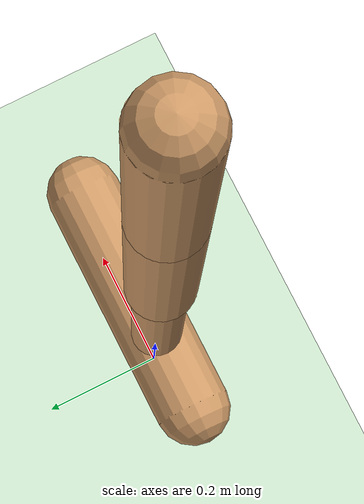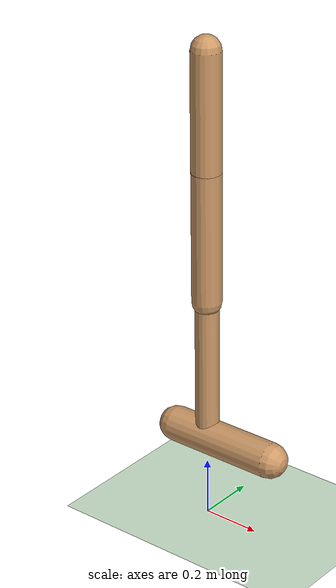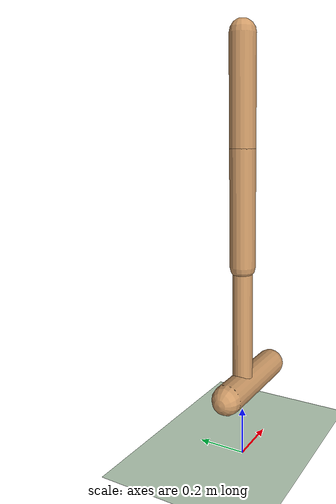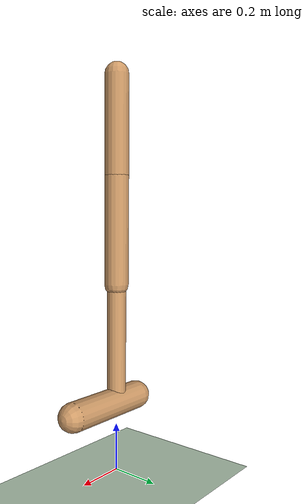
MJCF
<mujoco model="hopper">
  <compiler angle="degree" coordinate="local" inertiafromgeom="true"/>

  <option integrator="implicitfast" timestep="0.01"/>

  <default>
    <joint armature="0.01" damping="1" limited="true"/>
    <geom conaffinity="1" condim="1" contype="1" margin="0.001" material="geom" rgba="0.8 0.6 .4 1" solimp=".8 .8 .01" solref=".02 1"/>
    <motor ctrllimited="true" ctrlrange="-1.0 1.0" gear="25"/>
  </default>

  <asset>
    <texture type="skybox" builtin="gradient" rgb1=".4 .5 .6" rgb2="0 0 0" width="100" height="100"/>
    <texture builtin="checker" height="100" name="texplane" rgb1="0 0 0" rgb2="0.8 0.8 0.8" type="2d" width="100"/>
    <material name="MatPlane" reflectance="0.5" shininess="1" specular="1" texrepeat="60 60" texture="texplane"/>
    <texture builtin="flat" height="1278" mark="cross" markrgb="1 1 1" name="texgeom" random="0.01" rgb1="0.8 0.6 0.4" rgb2="0.8 0.6 0.4" type="cube" width="127"/>
    <material name="geom" texture="texgeom" texuniform="true"/>
  </asset>

  <worldbody>
    <light cutoff="100" diffuse="1 1 1" dir="0 0 -1" directional="true" pos="0 0 1.3" specular=".1 .1 .1"/>
    <geom conaffinity="1" condim="3" name="floor" pos="0 0 0" rgba="0.8 0.9 0.8 1" size="20 20 .125" type="plane" material="MatPlane"/>

    <body name="torso" pos="0 0 1.25">
      <camera name="track" mode="trackcom" pos="0 -3 1" xyaxes="1 0 0 0 0 1"/>
      <joint armature="0" axis="1 0 0" damping="0" limited="false" name="rootx" pos="0 0 0" stiffness="0" type="slide"/>
      <joint armature="0" axis="0 0 1" damping="0" limited="false" name="rootz" pos="0 0 0" stiffness="0" type="slide"/>
      <joint armature="0" axis="0 1 0" damping="0" limited="false" name="rooty" pos="0 0 0" stiffness="0" type="hinge"/>
      <geom friction="0.9" fromto="0 0 0.4 0 0 0" name="torso_geom" size="0.05" type="capsule"/>

      <body name="thigh" pos="0 0 0">
        <joint axis="0 -1 0" name="thigh_joint" pos="0 0 0" range="-150 150" type="hinge"/>
        <geom friction="0.9" fromto="0 0 0 0 0 -0.45" name="thigh_geom" size="0.05" type="capsule"/>

        <body name="leg" pos="0 0 -0.45">
          <joint axis="0 -1 0" name="leg_joint" pos="0 0 0" range="-150 150" type="hinge"/>
          <geom friction="0.9" fromto="0 0 0 0 0 -0.5" name="leg_geom" size="0.04" type="capsule"/>

          <body name="foot" pos="0 0 -0.5">
            <joint axis="0 -1 0" name="foot_joint" pos="0 0 0" range="-45 45" type="hinge"/>
            <geom friction="2.0" fromto="-0.13 0 0 0.26 0 0" name="foot_geom" size="0.06" type="capsule"/>
          </body>
        </body>
      </body>
    </body>
  </worldbody>

  <actuator>
    <motor joint="thigh_joint" name="thigh_motor"/>
    <motor joint="leg_joint" name="leg_motor"/>
    <motor joint="foot_joint" name="foot_motor"/>
  </actuator>
</mujoco>
